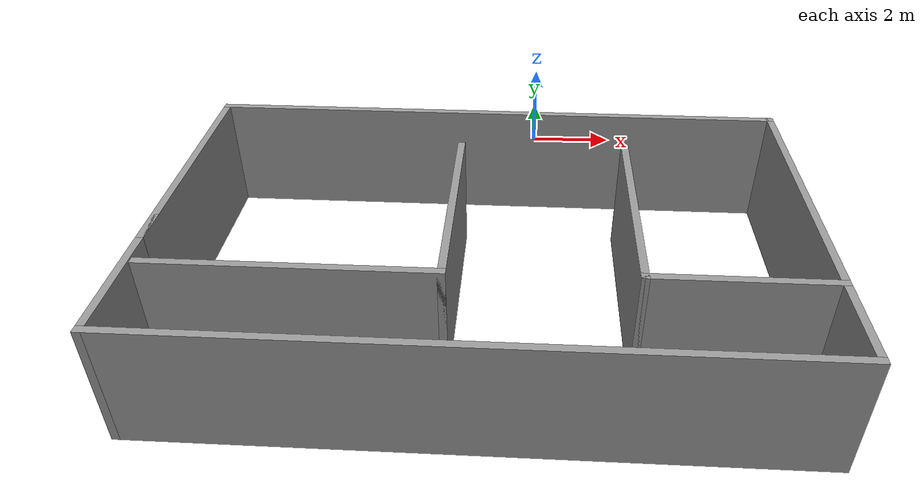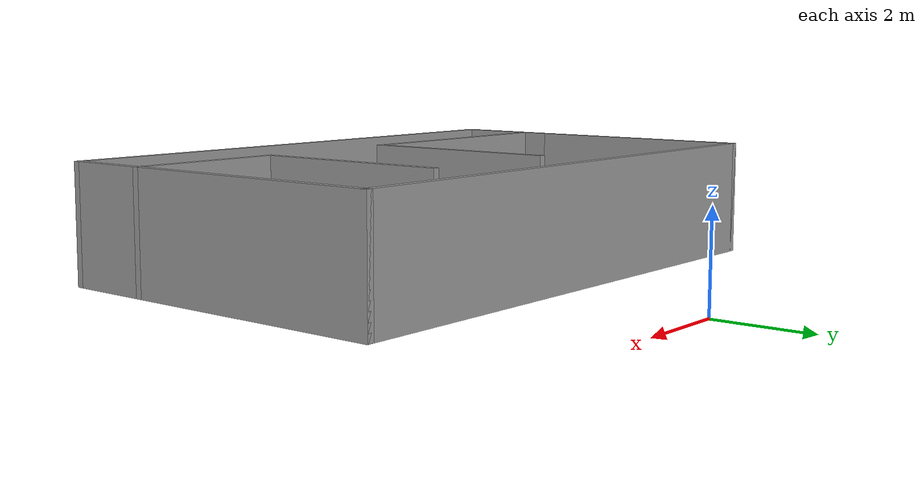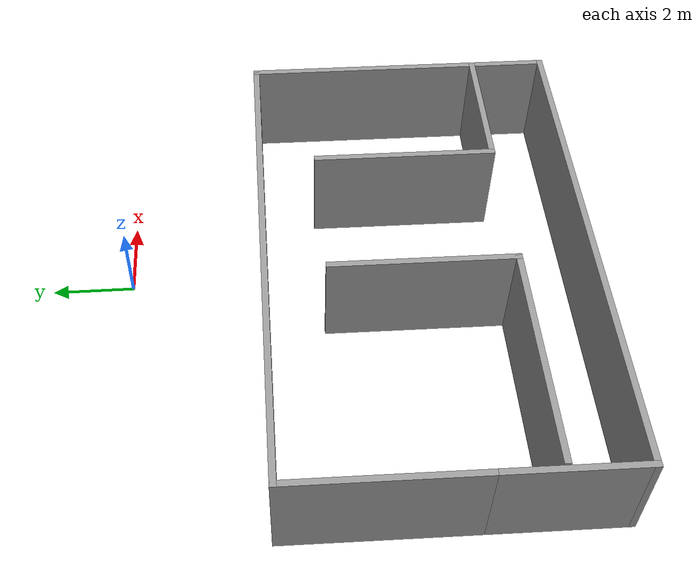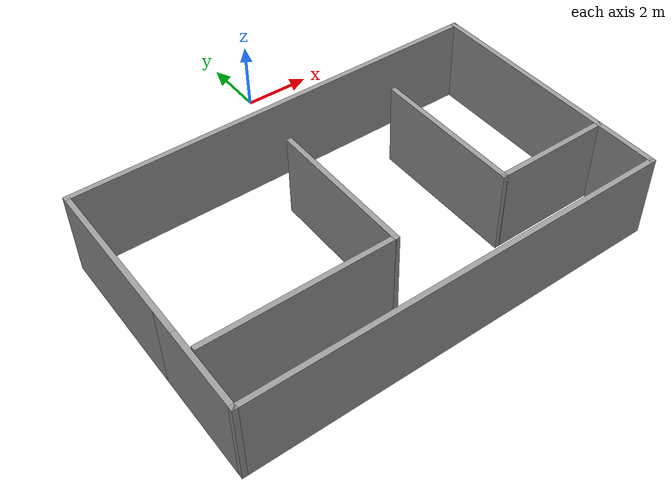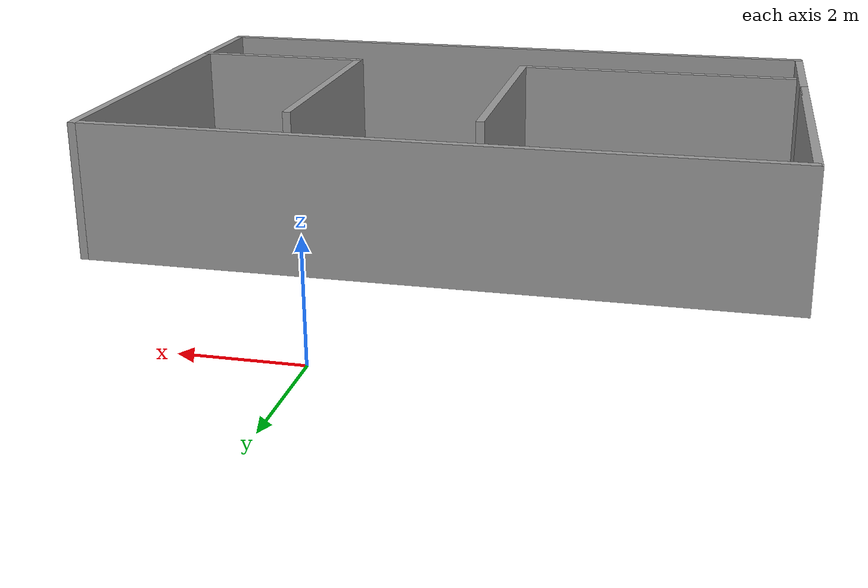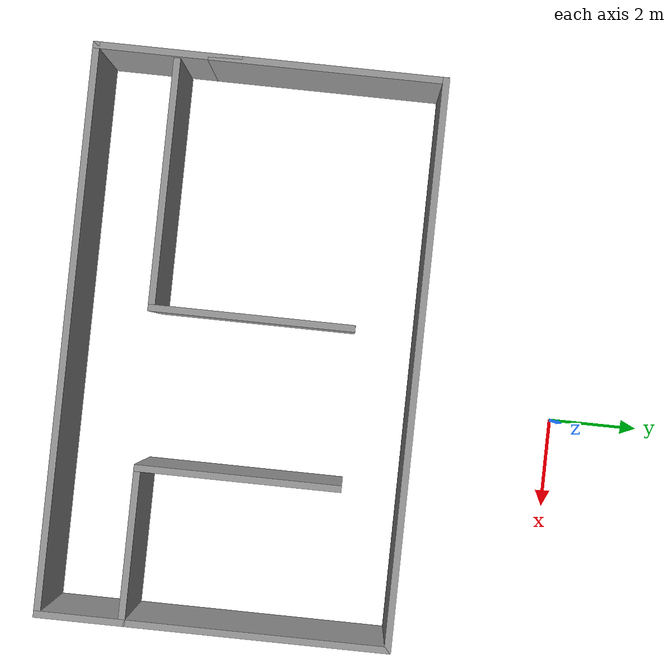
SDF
<?xml version='1.0'?>
<sdf version='1.7'>
  <model name='room'>
    <pose>-0.945 -5.4875 0 0 -0 0</pose>
    <link name='Wall_0'>
      <collision name='Wall_0_Collision'>
        <geometry>
          <box>
            <size>5.25 0.15 2.5</size>
          </box>
        </geometry>
        <pose>0 0 1.25 0 -0 0</pose>
      </collision>
      <visual name='Wall_0_Visual'>
        <pose>0 0 1.25 0 -0 0</pose>
        <geometry>
          <box>
            <size>5.25 0.15 2.5</size>
          </box>
        </geometry>
        <material>
          <script>
            <uri>file://media/materials/scripts/gazebo.material</uri>
            <name>Gazebo/Grey</name>
          </script>
          <ambient>1 1 1 1</ambient>
        </material>
        <meta>
          <layer>0</layer>
        </meta>
      </visual>
      <pose>-6.175 -0.3625 0 0 -0 1.5708</pose>
    </link>
    <link name='Wall_1'>
      <collision name='Wall_1_Collision'>
        <geometry>
          <box>
            <size>12.5 0.15 2.5</size>
          </box>
        </geometry>
        <pose>0 0 1.25 0 -0 0</pose>
      </collision>
      <visual name='Wall_1_Visual'>
        <pose>0 0 1.25 0 -0 0</pose>
        <geometry>
          <box>
            <size>12.5 0.15 2.5</size>
          </box>
        </geometry>
        <material>
          <script>
            <uri>file://media/materials/scripts/gazebo.material</uri>
            <name>Gazebo/Grey</name>
          </script>
          <ambient>1 1 1 1</ambient>
        </material>
        <meta>
          <layer>0</layer>
        </meta>
      </visual>
      <pose>-0 2.1875 0 0 -0 0</pose>
    </link>
    <link name='Wall_10'>
      <collision name='Wall_10_Collision'>
        <geometry>
          <box>
            <size>4.5 0.15 2.5</size>
          </box>
        </geometry>
        <pose>0 0 1.25 0 -0 0</pose>
      </collision>
      <visual name='Wall_10_Visual'>
        <pose>0 0 1.25 0 -0 0</pose>
        <geometry>
          <box>
            <size>4.5 0.15 2.5</size>
          </box>
        </geometry>
        <material>
          <script>
            <uri>file://media/materials/scripts/gazebo.material</uri>
            <name>Gazebo/Grey</name>
          </script>
          <ambient>1 1 1 1</ambient>
        </material>
        <meta>
          <layer>0</layer>
        </meta>
      </visual>
      <pose>2.825 -1.4075 0 0 -0 -1.5708</pose>
    </link>
    <link name='Wall_11'>
      <collision name='Wall_11_Collision'>
        <geometry>
          <box>
            <size>3.5 0.15 2.5</size>
          </box>
        </geometry>
        <pose>0 0 1.25 0 -0 0</pose>
      </collision>
      <visual name='Wall_11_Visual'>
        <pose>0 0 1.25 0 -0 0</pose>
        <geometry>
          <box>
            <size>3.5 0.15 2.5</size>
          </box>
        </geometry>
        <material>
          <script>
            <uri>file://media/materials/scripts/gazebo.material</uri>
            <name>Gazebo/Grey</name>
          </script>
          <ambient>1 1 1 1</ambient>
        </material>
        <meta>
          <layer>0</layer>
        </meta>
      </visual>
      <pose>4.5 -3.5825 0 0 -0 0</pose>
    </link>
    <link name='Wall_2'>
      <collision name='Wall_2_Collision'>
        <geometry>
          <box>
            <size>7.75 0.15 2.5</size>
          </box>
        </geometry>
        <pose>0 0 1.25 0 -0 0</pose>
      </collision>
      <visual name='Wall_2_Visual'>
        <pose>0 0 1.25 0 -0 0</pose>
        <geometry>
          <box>
            <size>7.75 0.15 2.5</size>
          </box>
        </geometry>
        <material>
          <script>
            <uri>file://media/materials/scripts/gazebo.material</uri>
            <name>Gazebo/Grey</name>
          </script>
          <ambient>1 1 1 1</ambient>
        </material>
        <meta>
          <layer>0</layer>
        </meta>
      </visual>
      <pose>6.175 -1.6125 0 0 -0 -1.5708</pose>
    </link>
    <link name='Wall_3'>
      <collision name='Wall_3_Collision'>
        <geometry>
          <box>
            <size>12.5 0.15 2.5</size>
          </box>
        </geometry>
        <pose>0 0 1.25 0 -0 0</pose>
      </collision>
      <visual name='Wall_3_Visual'>
        <pose>0 0 1.25 0 -0 0</pose>
        <geometry>
          <box>
            <size>12.5 0.15 2.5</size>
          </box>
        </geometry>
        <material>
          <script>
            <uri>file://media/materials/scripts/gazebo.material</uri>
            <name>Gazebo/Grey</name>
          </script>
          <ambient>1 1 1 1</ambient>
        </material>
        <meta>
          <layer>0</layer>
        </meta>
      </visual>
      <pose>-0 -5.4125 0 0 -0 3.14159</pose>
    </link>
    <link name='Wall_4'>
      <collision name='Wall_4_Collision'>
        <geometry>
          <box>
            <size>3.25 0.15 2.5</size>
          </box>
        </geometry>
        <pose>0 0 1.25 0 -0 0</pose>
      </collision>
      <visual name='Wall_4_Visual'>
        <pose>0 0 1.25 0 -0 0</pose>
        <geometry>
          <box>
            <size>3.25 0.15 2.5</size>
          </box>
        </geometry>
        <material>
          <script>
            <uri>file://media/materials/scripts/gazebo.material</uri>
            <name>Gazebo/Grey</name>
          </script>
          <ambient>1 1 1 1</ambient>
        </material>
        <meta>
          <layer>0</layer>
        </meta>
      </visual>
      <pose>-6.175 -3.8625 0 0 -0 1.5708</pose>
    </link>
    <link name='Wall_6'>
      <collision name='Wall_6_Collision'>
        <geometry>
          <box>
            <size>5.5 0.15 2.5</size>
          </box>
        </geometry>
        <pose>0 0 1.25 0 -0 0</pose>
      </collision>
      <visual name='Wall_6_Visual'>
        <pose>0 0 1.25 0 -0 0</pose>
        <geometry>
          <box>
            <size>5.5 0.15 2.5</size>
          </box>
        </geometry>
        <material>
          <script>
            <uri>file://media/materials/scripts/gazebo.material</uri>
            <name>Gazebo/Grey</name>
          </script>
          <ambient>1 1 1 1</ambient>
        </material>
        <meta>
          <layer>0</layer>
        </meta>
      </visual>
      <pose>-3.32 -3.6425 0 0 -0 0</pose>
    </link>
    <link name='Wall_7'>
      <collision name='Wall_7_Collision'>
        <geometry>
          <box>
            <size>4.5 0.15 2.5</size>
          </box>
        </geometry>
        <pose>0 0 1.25 0 -0 0</pose>
      </collision>
      <visual name='Wall_7_Visual'>
        <pose>0 0 1.25 0 -0 0</pose>
        <geometry>
          <box>
            <size>4.5 0.15 2.5</size>
          </box>
        </geometry>
        <material>
          <script>
            <uri>file://media/materials/scripts/gazebo.material</uri>
            <name>Gazebo/Grey</name>
          </script>
          <ambient>1 1 1 1</ambient>
        </material>
        <meta>
          <layer>0</layer>
        </meta>
      </visual>
      <pose>-0.645 -1.4675 0 0 -0 1.5708</pose>
    </link>
    <static>1</static>
  </model>
</sdf>
